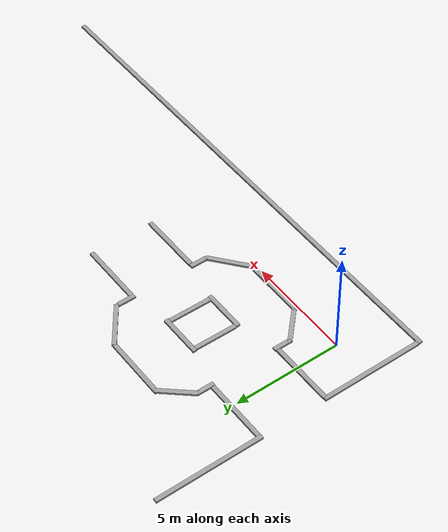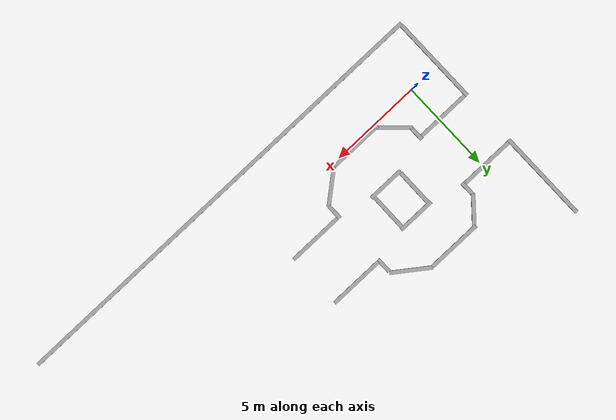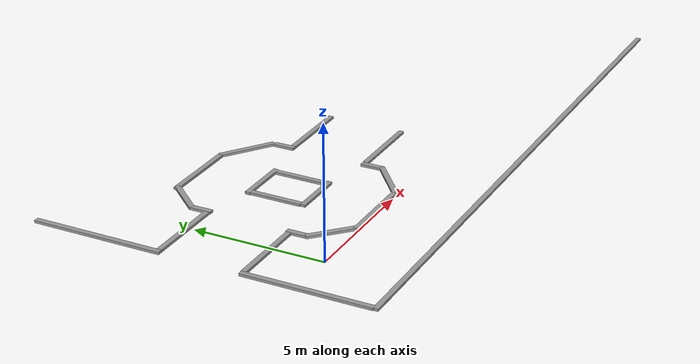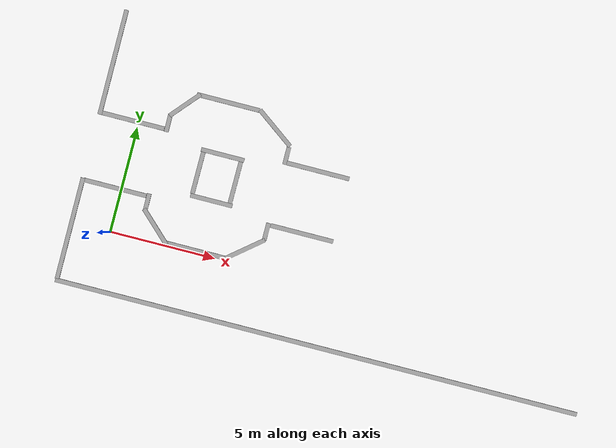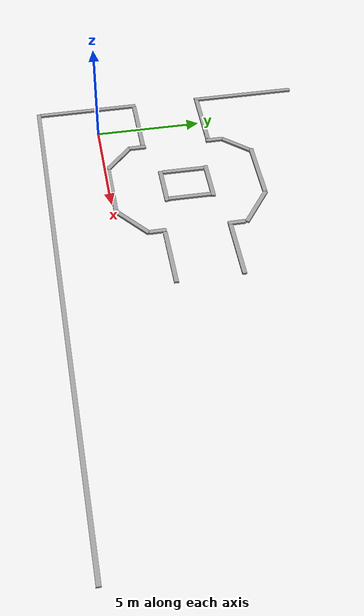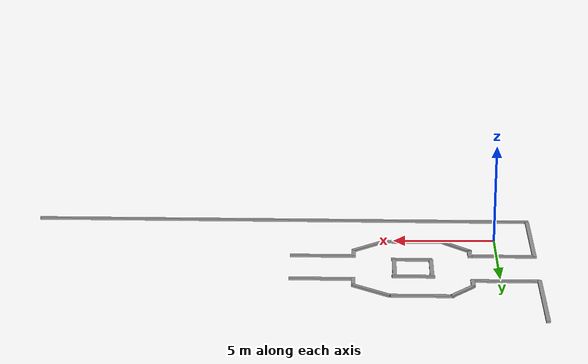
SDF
<sdf version="1.6">
 <model name="brick_box_3x1x3">
  <link name="link_1">
   <pose>-1.85709 -0.304134 0.5 0 -0 0</pose>
   <inertial>
    <mass>0.964444</mass>
    <inertia>
     <ixx>0.155127</ixx>
     <ixy>0</ixy>
     <ixz>0</ixz>
     <iyy>0.160741</iyy>
     <iyz>0</iyz>
     <izz>0.155127</izz>
    </inertia>
   </inertial>
   <visual name="visual">
    <pose>0 0 -0.5 0 -0 0</pose>
    <geometry><box><size>0.2 4.82222 0.1</size></box></geometry>
    <material>
     <lighting>1</lighting>
     <script><uri>file://media/materials/scripts/gazebo.material</uri><name>Gazebo/Grey</name></script>
     <ambient>0.3 0.3 0.3 1</ambient>
     <diffuse>0.7 0.7 0.7 1</diffuse>
     <specular>0.01 0.01 0.01 1</specular>
     <emissive>0 0 0 1</emissive>
     <shader type="vertex"><normal_map>__default__</normal_map></shader>
    </material>
   </visual>
   <collision name="collision">
    <pose>0 0 -0.5 0 -0 0</pose>
    <geometry><box><size>0.1 4.82222 0.2</size></box></geometry>
    <surface>
     <friction>
      <ode><mu>1</mu><mu2>1</mu2><fdir1>0 0 0</fdir1><slip1>0</slip1><slip2>0</slip2></ode>
      <torsional>
       <coefficient>1</coefficient>
       <patch_radius>0</patch_radius>
       <surface_radius>0</surface_radius>
       <use_patch_radius>1</use_patch_radius>
       <ode><slip>0</slip></ode>
      </torsional>
     </friction>
     <bounce><restitution_coefficient>0</restitution_coefficient><threshold>1e+06</threshold></bounce>
     <contact>
      <collide_without_contact>0</collide_without_contact>
      <collide_without_contact_bitmask>1</collide_without_contact_bitmask>
      <collide_bitmask>1</collide_bitmask>
      <ode>
       <soft_cfm>0</soft_cfm>
       <soft_erp>0.2</soft_erp>
       <kp>1e+13</kp>
       <kd>1</kd>
       <max_vel>0.01</max_vel>
       <min_depth>0</min_depth>
      </ode>
      <bullet>
       <split_impulse>1</split_impulse>
       <split_impulse_penetration_threshold>-0.01</split_impulse_penetration_threshold>
       <soft_cfm>0</soft_cfm>
       <soft_erp>0.2</soft_erp>
       <kp>1e+13</kp>
       <kd>1</kd>
      </bullet>
     </contact>
    </surface>
   </collision>
  </link>
  <link name="link_1_clone">
   <pose>-1.84895 7.65508 0.5 0 -0 0</pose>
   <inertial>
    <mass>1</mass>
    <inertia>
     <ixx>0.166667</ixx>
     <ixy>0</ixy>
     <ixz>0</ixz>
     <iyy>0.166667</iyy>
     <iyz>0</iyz>
     <izz>0.166667</izz>
    </inertia>
   </inertial>
   <visual name="visual">
    <pose>0 0 -0.5 0 -0 0</pose>
    <geometry><box><size>0.2 5 0.1</size></box></geometry>
    <material>
     <lighting>1</lighting>
     <script><uri>file://media/materials/scripts/gazebo.material</uri><name>Gazebo/Grey</name></script>
     <ambient>0.3 0.3 0.3 1</ambient>
     <diffuse>0.7 0.7 0.7 1</diffuse>
     <specular>0.01 0.01 0.01 1</specular>
     <emissive>0 0 0 1</emissive>
     <shader type="vertex"><normal_map>__default__</normal_map></shader>
    </material>
   </visual>
   <collision name="collision">
    <pose>0 0 -0.5 0 -0 0</pose>
    <geometry><box><size>0.1 5 0.2</size></box></geometry>
    <surface>
     <friction>
      <ode><mu>1</mu><mu2>1</mu2><fdir1>0 0 0</fdir1><slip1>0</slip1><slip2>0</slip2></ode>
      <torsional>
       <coefficient>1</coefficient>
       <patch_radius>0</patch_radius>
       <surface_radius>0</surface_radius>
       <use_patch_radius>1</use_patch_radius>
       <ode><slip>0</slip></ode>
      </torsional>
     </friction>
     <bounce><restitution_coefficient>0</restitution_coefficient><threshold>1e+06</threshold></bounce>
     <contact>
      <collide_without_contact>0</collide_without_contact>
      <collide_without_contact_bitmask>1</collide_without_contact_bitmask>
      <collide_bitmask>1</collide_bitmask>
      <ode>
       <soft_cfm>0</soft_cfm>
       <soft_erp>0.2</soft_erp>
       <kp>1e+13</kp>
       <kd>1</kd>
       <max_vel>0.01</max_vel>
       <min_depth>0</min_depth>
      </ode>
      <bullet>
       <split_impulse>1</split_impulse>
       <split_impulse_penetration_threshold>-0.01</split_impulse_penetration_threshold>
       <soft_cfm>0</soft_cfm>
       <soft_erp>0.2</soft_erp>
       <kp>1e+13</kp>
       <kd>1</kd>
      </bullet>
     </contact>
    </surface>
   </collision>
  </link>
  <link name="link_1_clone_0">
   <pose>10.5728 -2.79376 0.5 0 -0 0</pose>
   <inertial>
    <mass>1</mass>
    <inertia>
     <ixx>0.166667</ixx>
     <ixy>0</ixy>
     <ixz>0</ixz>
     <iyy>0.166667</iyy>
     <iyz>0</iyz>
     <izz>0.166667</izz>
    </inertia>
   </inertial>
   <visual name="visual">
    <pose>0 0 -0.5 0 -0 0</pose>
    <geometry><box><size>25 0.2 0.1</size></box></geometry>
    <material>
     <lighting>1</lighting>
     <script><uri>file://media/materials/scripts/gazebo.material</uri><name>Gazebo/Grey</name></script>
     <ambient>0.3 0.3 0.3 1</ambient>
     <diffuse>0.7 0.7 0.7 1</diffuse>
     <specular>0.01 0.01 0.01 1</specular>
     <emissive>0 0 0 1</emissive>
     <shader type="vertex"><normal_map>__default__</normal_map></shader>
    </material>
   </visual>
   <collision name="collision">
    <pose>0 0 -0.5 0 -0 0</pose>
    <geometry><box><size>25 0.2 0.2</size></box></geometry>
    <surface>
     <friction>
      <ode><mu>1</mu><mu2>1</mu2><fdir1>0 0 0</fdir1><slip1>0</slip1><slip2>0</slip2></ode>
      <torsional>
       <coefficient>1</coefficient>
       <patch_radius>0</patch_radius>
       <surface_radius>0</surface_radius>
       <use_patch_radius>1</use_patch_radius>
       <ode><slip>0</slip></ode>
      </torsional>
     </friction>
     <bounce><restitution_coefficient>0</restitution_coefficient><threshold>1e+06</threshold></bounce>
     <contact>
      <collide_without_contact>0</collide_without_contact>
      <collide_without_contact_bitmask>1</collide_without_contact_bitmask>
      <collide_bitmask>1</collide_bitmask>
      <ode>
       <soft_cfm>0</soft_cfm>
       <soft_erp>0.2</soft_erp>
       <kp>1e+13</kp>
       <kd>1</kd>
       <max_vel>0.01</max_vel>
       <min_depth>0</min_depth>
      </ode>
      <bullet>
       <split_impulse>1</split_impulse>
       <split_impulse_penetration_threshold>-0.01</split_impulse_penetration_threshold>
       <soft_cfm>0</soft_cfm>
       <soft_erp>0.2</soft_erp>
       <kp>1e+13</kp>
       <kd>1</kd>
      </bullet>
     </contact>
    </surface>
   </collision>
  </link>
  <link name="link_1_clone_3">
   <pose>-0.307076 2.03145 0.5 0 -0 0</pose>
   <inertial>
    <mass>1</mass>
    <inertia>
     <ixx>0.166667</ixx>
     <ixy>0</ixy>
     <ixz>0</ixz>
     <iyy>0.166667</iyy>
     <iyz>0</iyz>
     <izz>0.166667</izz>
    </inertia>
   </inertial>
   <visual name="visual">
    <pose>0 0 -0.5 0 -0 0</pose>
    <geometry><box><size>3 0.2 0.1</size></box></geometry>
    <material>
     <lighting>1</lighting>
     <script><uri>file://media/materials/scripts/gazebo.material</uri><name>Gazebo/Grey</name></script>
     <ambient>0.3 0.3 0.3 1</ambient>
     <diffuse>0.7 0.7 0.7 1</diffuse>
     <specular>0.01 0.01 0.01 1</specular>
     <emissive>0 0 0 1</emissive>
     <shader type="vertex"><normal_map>__default__</normal_map></shader>
    </material>
   </visual>
   <collision name="collision">
    <pose>0 0 -0.5 0 -0 0</pose>
    <geometry><box><size>3 0.2 0.2</size></box></geometry>
    <surface>
     <friction>
      <ode><mu>1</mu><mu2>1</mu2><fdir1>0 0 0</fdir1><slip1>0</slip1><slip2>0</slip2></ode>
      <torsional>
       <coefficient>1</coefficient>
       <patch_radius>0</patch_radius>
       <surface_radius>0</surface_radius>
       <use_patch_radius>1</use_patch_radius>
       <ode><slip>0</slip></ode>
      </torsional>
     </friction>
     <bounce><restitution_coefficient>0</restitution_coefficient><threshold>1e+06</threshold></bounce>
     <contact>
      <collide_without_contact>0</collide_without_contact>
      <collide_without_contact_bitmask>1</collide_without_contact_bitmask>
      <collide_bitmask>1</collide_bitmask>
      <ode>
       <soft_cfm>0</soft_cfm>
       <soft_erp>0.2</soft_erp>
       <kp>1e+13</kp>
       <kd>1</kd>
       <max_vel>0.01</max_vel>
       <min_depth>0</min_depth>
      </ode>
      <bullet>
       <split_impulse>1</split_impulse>
       <split_impulse_penetration_threshold>-0.01</split_impulse_penetration_threshold>
       <soft_cfm>0</soft_cfm>
       <soft_erp>0.2</soft_erp>
       <kp>1e+13</kp>
       <kd>1</kd>
      </bullet>
     </contact>
    </surface>
   </collision>
  </link>
  <link name="link_1_clone_3_clone">
   <pose>-0.278142 5.2552 0.5 0 -0 0</pose>
   <inertial>
    <mass>1</mass>
    <inertia>
     <ixx>0.166667</ixx>
     <ixy>0</ixy>
     <ixz>0</ixz>
     <iyy>0.166667</iyy>
     <iyz>0</iyz>
     <izz>0.166667</izz>
    </inertia>
   </inertial>
   <visual name="visual">
    <pose>0 0 -0.5 0 -0 0</pose>
    <geometry><box><size>3 0.2 0.1</size></box></geometry>
    <material>
     <lighting>1</lighting>
     <script><uri>file://media/materials/scripts/gazebo.material</uri><name>Gazebo/Grey</name></script>
     <ambient>0.3 0.3 0.3 1</ambient>
     <diffuse>0.7 0.7 0.7 1</diffuse>
     <specular>0.01 0.01 0.01 1</specular>
     <emissive>0 0 0 1</emissive>
     <shader type="vertex"><normal_map>__default__</normal_map></shader>
    </material>
   </visual>
   <collision name="collision">
    <pose>0 0 -0.5 0 -0 0</pose>
    <geometry><box><size>3 0.2 0.2</size></box></geometry>
    <surface>
     <friction>
      <ode><mu>1</mu><mu2>1</mu2><fdir1>0 0 0</fdir1><slip1>0</slip1><slip2>0</slip2></ode>
      <torsional>
       <coefficient>1</coefficient>
       <patch_radius>0</patch_radius>
       <surface_radius>0</surface_radius>
       <use_patch_radius>1</use_patch_radius>
       <ode><slip>0</slip></ode>
      </torsional>
     </friction>
     <bounce><restitution_coefficient>0</restitution_coefficient><threshold>1e+06</threshold></bounce>
     <contact>
      <collide_without_contact>0</collide_without_contact>
      <collide_without_contact_bitmask>1</collide_without_contact_bitmask>
      <collide_bitmask>1</collide_bitmask>
      <ode>
       <soft_cfm>0</soft_cfm>
       <soft_erp>0.2</soft_erp>
       <kp>1e+13</kp>
       <kd>1</kd>
       <max_vel>0.01</max_vel>
       <min_depth>0</min_depth>
      </ode>
      <bullet>
       <split_impulse>1</split_impulse>
       <split_impulse_penetration_threshold>-0.01</split_impulse_penetration_threshold>
       <soft_cfm>0</soft_cfm>
       <soft_erp>0.2</soft_erp>
       <kp>1e+13</kp>
       <kd>1</kd>
      </bullet>
     </contact>
    </surface>
   </collision>
  </link>
  <link name="link_1_clone_3_clone_10">
   <pose>6.19258 6.57027 0.5 0 0 -0.628314</pose>
   <inertial>
    <mass>0.633292</mass>
    <inertia>
     <ixx>0.107431</ixx>
     <ixy>0</ixy>
     <ixz>0</ixz>
     <iyy>0.0732112</iyy>
     <iyz>0</iyz>
     <izz>0.0750937</izz>
    </inertia>
   </inertial>
   <visual name="visual">
    <pose>0 0 -0.5 0 -0 0</pose>
    <geometry><box><size>2.17802 0.203535 0.1</size></box></geometry>
    <material>
     <lighting>1</lighting>
     <script><uri>file://media/materials/scripts/gazebo.material</uri><name>Gazebo/Grey</name></script>
     <ambient>0.3 0.3 0.3 1</ambient>
     <diffuse>0.7 0.7 0.7 1</diffuse>
     <specular>0.01 0.01 0.01 1</specular>
     <emissive>0 0 0 1</emissive>
     <shader type="vertex"><normal_map>__default__</normal_map></shader>
    </material>
   </visual>
   <collision name="collision">
    <pose>0 0 -0.5 0 -0 0</pose>
    <geometry><box><size>2.17802 0.203535 0.2</size></box></geometry>
    <surface>
     <friction>
      <ode><mu>1</mu><mu2>1</mu2><fdir1>0 0 0</fdir1><slip1>0</slip1><slip2>0</slip2></ode>
      <torsional>
       <coefficient>1</coefficient>
       <patch_radius>0</patch_radius>
       <surface_radius>0</surface_radius>
       <use_patch_radius>1</use_patch_radius>
       <ode><slip>0</slip></ode>
      </torsional>
     </friction>
     <bounce><restitution_coefficient>0</restitution_coefficient><threshold>1e+06</threshold></bounce>
     <contact>
      <collide_without_contact>0</collide_without_contact>
      <collide_without_contact_bitmask>1</collide_without_contact_bitmask>
      <collide_bitmask>1</collide_bitmask>
      <ode>
       <soft_cfm>0</soft_cfm>
       <soft_erp>0.2</soft_erp>
       <kp>1e+13</kp>
       <kd>1</kd>
       <max_vel>0.01</max_vel>
       <min_depth>0</min_depth>
      </ode>
      <bullet>
       <split_impulse>1</split_impulse>
       <split_impulse_penetration_threshold>-0.01</split_impulse_penetration_threshold>
       <soft_cfm>0</soft_cfm>
       <soft_erp>0.2</soft_erp>
       <kp>1e+13</kp>
       <kd>1</kd>
      </bullet>
     </contact>
    </surface>
   </collision>
  </link>
  <link name="link_1_clone_3_clone_10_clone">
   <pose>1.95197 0.748415 0.5 0 0 -0.76059</pose>
   <inertial>
    <mass>0.5645</mass>
    <inertia>
     <ixx>0.0957615</ixx>
     <ixy>0</ixy>
     <ixz>0</ixz>
     <iyy>0.0615164</iyy>
     <iyz>0</iyz>
     <izz>0.0631938</izz>
    </inertia>
   </inertial>
   <visual name="visual">
    <pose>0 0 -0.5 0 -0 0</pose>
    <geometry><box><size>1.94144 0.203535 0.1</size></box></geometry>
    <material>
     <lighting>1</lighting>
     <script><uri>file://media/materials/scripts/gazebo.material</uri><name>Gazebo/Grey</name></script>
     <ambient>0.3 0.3 0.3 1</ambient>
     <diffuse>0.7 0.7 0.7 1</diffuse>
     <specular>0.01 0.01 0.01 1</specular>
     <emissive>0 0 0 1</emissive>
     <shader type="vertex"><normal_map>__default__</normal_map></shader>
    </material>
   </visual>
   <collision name="collision">
    <pose>0 0 -0.5 0 -0 0</pose>
    <geometry><box><size>1.94144 0.203535 0.2</size></box></geometry>
    <surface>
     <friction>
      <ode><mu>1</mu><mu2>1</mu2><fdir1>0 0 0</fdir1><slip1>0</slip1><slip2>0</slip2></ode>
      <torsional>
       <coefficient>1</coefficient>
       <patch_radius>0</patch_radius>
       <surface_radius>0</surface_radius>
       <use_patch_radius>1</use_patch_radius>
       <ode><slip>0</slip></ode>
      </torsional>
     </friction>
     <bounce><restitution_coefficient>0</restitution_coefficient><threshold>1e+06</threshold></bounce>
     <contact>
      <collide_without_contact>0</collide_without_contact>
      <collide_without_contact_bitmask>1</collide_without_contact_bitmask>
      <collide_bitmask>1</collide_bitmask>
      <ode>
       <soft_cfm>0</soft_cfm>
       <soft_erp>0.2</soft_erp>
       <kp>1e+13</kp>
       <kd>1</kd>
       <max_vel>0.01</max_vel>
       <min_depth>0</min_depth>
      </ode>
      <bullet>
       <split_impulse>1</split_impulse>
       <split_impulse_penetration_threshold>-0.01</split_impulse_penetration_threshold>
       <soft_cfm>0</soft_cfm>
       <soft_erp>0.2</soft_erp>
       <kp>1e+13</kp>
       <kd>1</kd>
      </bullet>
     </contact>
    </surface>
   </collision>
  </link>
  <link name="link_1_clone_3_clone_10_clone_0">
   <pose>1.88231 6.56558 0.5 0 0 -2.28733</pose>
   <inertial>
    <mass>0.507827</mass>
    <inertia>
     <ixx>0.0861472</ixx>
     <ixy>0</ixy>
     <ixz>0</ixz>
     <iyy>0.0528569</iyy>
     <iyz>0</iyz>
     <izz>0.0543659</izz>
    </inertia>
   </inertial>
   <visual name="visual">
    <pose>0 0 -0.5 0 -0 0</pose>
    <geometry><box><size>1.74653 0.203535 0.1</size></box></geometry>
    <material>
     <lighting>1</lighting>
     <script><uri>file://media/materials/scripts/gazebo.material</uri><name>Gazebo/Grey</name></script>
     <ambient>0.3 0.3 0.3 1</ambient>
     <diffuse>0.7 0.7 0.7 1</diffuse>
     <specular>0.01 0.01 0.01 1</specular>
     <emissive>0 0 0 1</emissive>
     <shader type="vertex"><normal_map>__default__</normal_map></shader>
    </material>
   </visual>
   <collision name="collision">
    <pose>0 0 -0.5 0 -0 0</pose>
    <geometry><box><size>1.74653 0.203535 0.2</size></box></geometry>
    <surface>
     <friction>
      <ode><mu>1</mu><mu2>1</mu2><fdir1>0 0 0</fdir1><slip1>0</slip1><slip2>0</slip2></ode>
      <torsional>
       <coefficient>1</coefficient>
       <patch_radius>0</patch_radius>
       <surface_radius>0</surface_radius>
       <use_patch_radius>1</use_patch_radius>
       <ode><slip>0</slip></ode>
      </torsional>
     </friction>
     <bounce><restitution_coefficient>0</restitution_coefficient><threshold>1e+06</threshold></bounce>
     <contact>
      <collide_without_contact>0</collide_without_contact>
      <collide_without_contact_bitmask>1</collide_without_contact_bitmask>
      <collide_bitmask>1</collide_bitmask>
      <ode>
       <soft_cfm>0</soft_cfm>
       <soft_erp>0.2</soft_erp>
       <kp>1e+13</kp>
       <kd>1</kd>
       <max_vel>0.01</max_vel>
       <min_depth>0</min_depth>
      </ode>
      <bullet>
       <split_impulse>1</split_impulse>
       <split_impulse_penetration_threshold>-0.01</split_impulse_penetration_threshold>
       <soft_cfm>0</soft_cfm>
       <soft_erp>0.2</soft_erp>
       <kp>1e+13</kp>
       <kd>1</kd>
      </bullet>
     </contact>
    </surface>
   </collision>
  </link>
  <link name="link_1_clone_3_clone_10_clone_1">
   <pose>1.30623 1.75197 0.5 0 0 -1.56821</pose>
   <inertial>
    <mass>0.239353</mass>
    <inertia>
     <ixx>0.0406036</ixx>
     <ixy>0</ixy>
     <ixz>0</ixz>
     <iyy>0.0210496</iyy>
     <iyz>0</iyz>
     <izz>0.0217608</izz>
    </inertia>
   </inertial>
   <visual name="visual">
    <pose>0 0 -0.5 0 -0 0</pose>
    <geometry><box><size>0.823187 0.203535 0.1</size></box></geometry>
    <material>
     <lighting>1</lighting>
     <script><uri>file://media/materials/scripts/gazebo.material</uri><name>Gazebo/Grey</name></script>
     <ambient>0.3 0.3 0.3 1</ambient>
     <diffuse>0.7 0.7 0.7 1</diffuse>
     <specular>0.01 0.01 0.01 1</specular>
     <emissive>0 0 0 1</emissive>
     <shader type="vertex"><normal_map>__default__</normal_map></shader>
    </material>
   </visual>
   <collision name="collision">
    <pose>0 0 -0.5 0 -0 0</pose>
    <geometry><box><size>0.823187 0.203535 0.2</size></box></geometry>
    <surface>
     <friction>
      <ode><mu>1</mu><mu2>1</mu2><fdir1>0 0 0</fdir1><slip1>0</slip1><slip2>0</slip2></ode>
      <torsional>
       <coefficient>1</coefficient>
       <patch_radius>0</patch_radius>
       <surface_radius>0</surface_radius>
       <use_patch_radius>1</use_patch_radius>
       <ode><slip>0</slip></ode>
      </torsional>
     </friction>
     <bounce><restitution_coefficient>0</restitution_coefficient><threshold>1e+06</threshold></bounce>
     <contact>
      <collide_without_contact>0</collide_without_contact>
      <collide_without_contact_bitmask>1</collide_without_contact_bitmask>
      <collide_bitmask>1</collide_bitmask>
      <ode>
       <soft_cfm>0</soft_cfm>
       <soft_erp>0.2</soft_erp>
       <kp>1e+13</kp>
       <kd>1</kd>
       <max_vel>0.01</max_vel>
       <min_depth>0</min_depth>
      </ode>
      <bullet>
       <split_impulse>1</split_impulse>
       <split_impulse_penetration_threshold>-0.01</split_impulse_penetration_threshold>
       <soft_cfm>0</soft_cfm>
       <soft_erp>0.2</soft_erp>
       <kp>1e+13</kp>
       <kd>1</kd>
      </bullet>
     </contact>
    </surface>
   </collision>
  </link>
  <link name="link_1_clone_3_clone_10_clone_1_clone">
   <pose>1.33845 5.54897 0.5 0 0 -1.56821</pose>
   <inertial>
    <mass>0.239353</mass>
    <inertia>
     <ixx>0.0406036</ixx>
     <ixy>0</ixy>
     <ixz>0</ixz>
     <iyy>0.0210496</iyy>
     <iyz>0</iyz>
     <izz>0.0217608</izz>
    </inertia>
   </inertial>
   <visual name="visual">
    <pose>0 0 -0.5 0 -0 0</pose>
    <geometry><box><size>0.823187 0.203535 0.1</size></box></geometry>
    <material>
     <lighting>1</lighting>
     <script><uri>file://media/materials/scripts/gazebo.material</uri><name>Gazebo/Grey</name></script>
     <ambient>0.3 0.3 0.3 1</ambient>
     <diffuse>0.7 0.7 0.7 1</diffuse>
     <specular>0.01 0.01 0.01 1</specular>
     <emissive>0 0 0 1</emissive>
     <shader type="vertex"><normal_map>__default__</normal_map></shader>
    </material>
   </visual>
   <collision name="collision">
    <pose>0 0 -0.5 0 -0 0</pose>
    <geometry><box><size>0.823187 0.203535 0.2</size></box></geometry>
    <surface>
     <friction>
      <ode><mu>1</mu><mu2>1</mu2><fdir1>0 0 0</fdir1><slip1>0</slip1><slip2>0</slip2></ode>
      <torsional>
       <coefficient>1</coefficient>
       <patch_radius>0</patch_radius>
       <surface_radius>0</surface_radius>
       <use_patch_radius>1</use_patch_radius>
       <ode><slip>0</slip></ode>
      </torsional>
     </friction>
     <bounce><restitution_coefficient>0</restitution_coefficient><threshold>1e+06</threshold></bounce>
     <contact>
      <collide_without_contact>0</collide_without_contact>
      <collide_without_contact_bitmask>1</collide_without_contact_bitmask>
      <collide_bitmask>1</collide_bitmask>
      <ode>
       <soft_cfm>0</soft_cfm>
       <soft_erp>0.2</soft_erp>
       <kp>1e+13</kp>
       <kd>1</kd>
       <max_vel>0.01</max_vel>
       <min_depth>0</min_depth>
      </ode>
      <bullet>
       <split_impulse>1</split_impulse>
       <split_impulse_penetration_threshold>-0.01</split_impulse_penetration_threshold>
       <soft_cfm>0</soft_cfm>
       <soft_erp>0.2</soft_erp>
       <kp>1e+13</kp>
       <kd>1</kd>
      </bullet>
     </contact>
    </surface>
   </collision>
  </link>
  <link name="link_1_clone_3_clone_10_clone_1_clone_0">
   <pose>7.00342 1.81838 0.5 0 0 -1.56821</pose>
   <inertial>
    <mass>0.239353</mass>
    <inertia>
     <ixx>0.0406036</ixx>
     <ixy>0</ixy>
     <ixz>0</ixz>
     <iyy>0.0210496</iyy>
     <iyz>0</iyz>
     <izz>0.0217608</izz>
    </inertia>
   </inertial>
   <visual name="visual">
    <pose>0 0 -0.5 0 -0 0</pose>
    <geometry><box><size>0.823187 0.203535 0.1</size></box></geometry>
    <material>
     <lighting>1</lighting>
     <script><uri>file://media/materials/scripts/gazebo.material</uri><name>Gazebo/Grey</name></script>
     <ambient>0.3 0.3 0.3 1</ambient>
     <diffuse>0.7 0.7 0.7 1</diffuse>
     <specular>0.01 0.01 0.01 1</specular>
     <emissive>0 0 0 1</emissive>
     <shader type="vertex"><normal_map>__default__</normal_map></shader>
    </material>
   </visual>
   <collision name="collision">
    <pose>0 0 -0.5 0 -0 0</pose>
    <geometry><box><size>0.823187 0.203535 0.2</size></box></geometry>
    <surface>
     <friction>
      <ode><mu>1</mu><mu2>1</mu2><fdir1>0 0 0</fdir1><slip1>0</slip1><slip2>0</slip2></ode>
      <torsional>
       <coefficient>1</coefficient>
       <patch_radius>0</patch_radius>
       <surface_radius>0</surface_radius>
       <use_patch_radius>1</use_patch_radius>
       <ode><slip>0</slip></ode>
      </torsional>
     </friction>
     <bounce><restitution_coefficient>0</restitution_coefficient><threshold>1e+06</threshold></bounce>
     <contact>
      <collide_without_contact>0</collide_without_contact>
      <collide_without_contact_bitmask>1</collide_without_contact_bitmask>
      <collide_bitmask>1</collide_bitmask>
      <ode>
       <soft_cfm>0</soft_cfm>
       <soft_erp>0.2</soft_erp>
       <kp>1e+13</kp>
       <kd>1</kd>
       <max_vel>0.01</max_vel>
       <min_depth>0</min_depth>
      </ode>
      <bullet>
       <split_impulse>1</split_impulse>
       <split_impulse_penetration_threshold>-0.01</split_impulse_penetration_threshold>
       <soft_cfm>0</soft_cfm>
       <soft_erp>0.2</soft_erp>
       <kp>1e+13</kp>
       <kd>1</kd>
      </bullet>
     </contact>
    </surface>
   </collision>
  </link>
  <link name="link_1_clone_3_clone_10_clone_1_clone_1">
   <pose>7.04036 5.46158 0.5 0 0 -1.56821</pose>
   <inertial>
    <mass>0.239353</mass>
    <inertia>
     <ixx>0.0406036</ixx>
     <ixy>0</ixy>
     <ixz>0</ixz>
     <iyy>0.0210496</iyy>
     <iyz>0</iyz>
     <izz>0.0217608</izz>
    </inertia>
   </inertial>
   <visual name="visual">
    <pose>0 0 -0.5 0 -0 0</pose>
    <geometry><box><size>0.823187 0.203535 0.1</size></box></geometry>
    <material>
     <lighting>1</lighting>
     <script><uri>file://media/materials/scripts/gazebo.material</uri><name>Gazebo/Grey</name></script>
     <ambient>0.3 0.3 0.3 1</ambient>
     <diffuse>0.7 0.7 0.7 1</diffuse>
     <specular>0.01 0.01 0.01 1</specular>
     <emissive>0 0 0 1</emissive>
     <shader type="vertex"><normal_map>__default__</normal_map></shader>
    </material>
   </visual>
   <collision name="collision">
    <pose>0 0 -0.5 0 -0 0</pose>
    <geometry><box><size>0.823187 0.203535 0.2</size></box></geometry>
    <surface>
     <friction>
      <ode><mu>1</mu><mu2>1</mu2><fdir1>0 0 0</fdir1><slip1>0</slip1><slip2>0</slip2></ode>
      <torsional>
       <coefficient>1</coefficient>
       <patch_radius>0</patch_radius>
       <surface_radius>0</surface_radius>
       <use_patch_radius>1</use_patch_radius>
       <ode><slip>0</slip></ode>
      </torsional>
     </friction>
     <bounce><restitution_coefficient>0</restitution_coefficient><threshold>1e+06</threshold></bounce>
     <contact>
      <collide_without_contact>0</collide_without_contact>
      <collide_without_contact_bitmask>1</collide_without_contact_bitmask>
      <collide_bitmask>1</collide_bitmask>
      <ode>
       <soft_cfm>0</soft_cfm>
       <soft_erp>0.2</soft_erp>
       <kp>1e+13</kp>
       <kd>1</kd>
       <max_vel>0.01</max_vel>
       <min_depth>0</min_depth>
      </ode>
      <bullet>
       <split_impulse>1</split_impulse>
       <split_impulse_penetration_threshold>-0.01</split_impulse_penetration_threshold>
       <soft_cfm>0</soft_cfm>
       <soft_erp>0.2</soft_erp>
       <kp>1e+13</kp>
       <kd>1</kd>
      </bullet>
     </contact>
    </surface>
   </collision>
  </link>
  <link name="link_1_clone_3_clone_10_clone_2">
   <pose>6.23458 0.770061 0.5 0 0 -2.45426</pose>
   <inertial>
    <mass>0.603389</mass>
    <inertia>
     <ixx>0.102359</ixx>
     <ixy>0</ixy>
     <ixz>0</ixz>
     <iyy>0.0679589</iyy>
     <iyz>0</iyz>
     <izz>0.0697524</izz>
    </inertia>
   </inertial>
   <visual name="visual">
    <pose>0 0 -0.5 0 -0 0</pose>
    <geometry><box><size>2.07517 0.203535 0.1</size></box></geometry>
    <material>
     <lighting>1</lighting>
     <script><uri>file://media/materials/scripts/gazebo.material</uri><name>Gazebo/Grey</name></script>
     <ambient>0.3 0.3 0.3 1</ambient>
     <diffuse>0.7 0.7 0.7 1</diffuse>
     <specular>0.01 0.01 0.01 1</specular>
     <emissive>0 0 0 1</emissive>
     <shader type="vertex"><normal_map>__default__</normal_map></shader>
    </material>
   </visual>
   <collision name="collision">
    <pose>0 0 -0.5 0 -0 0</pose>
    <geometry><box><size>2.07517 0.203535 0.2</size></box></geometry>
    <surface>
     <friction>
      <ode><mu>1</mu><mu2>1</mu2><fdir1>0 0 0</fdir1><slip1>0</slip1><slip2>0</slip2></ode>
      <torsional>
       <coefficient>1</coefficient>
       <patch_radius>0</patch_radius>
       <surface_radius>0</surface_radius>
       <use_patch_radius>1</use_patch_radius>
       <ode><slip>0</slip></ode>
      </torsional>
     </friction>
     <bounce><restitution_coefficient>0</restitution_coefficient><threshold>1e+06</threshold></bounce>
     <contact>
      <collide_without_contact>0</collide_without_contact>
      <collide_without_contact_bitmask>1</collide_without_contact_bitmask>
      <collide_bitmask>1</collide_bitmask>
      <ode>
       <soft_cfm>0</soft_cfm>
       <soft_erp>0.2</soft_erp>
       <kp>1e+13</kp>
       <kd>1</kd>
       <max_vel>0.01</max_vel>
       <min_depth>0</min_depth>
      </ode>
      <bullet>
       <split_impulse>1</split_impulse>
       <split_impulse_penetration_threshold>-0.01</split_impulse_penetration_threshold>
       <soft_cfm>0</soft_cfm>
       <soft_erp>0.2</soft_erp>
       <kp>1e+13</kp>
       <kd>1</kd>
      </bullet>
     </contact>
    </surface>
   </collision>
  </link>
  <link name="link_1_clone_3_clone_2">
   <pose>8.62043 2.14783 0.5 0 -0 0</pose>
   <inertial>
    <mass>1</mass>
    <inertia>
     <ixx>0.166667</ixx>
     <ixy>0</ixy>
     <ixz>0</ixz>
     <iyy>0.166667</iyy>
     <iyz>0</iyz>
     <izz>0.166667</izz>
    </inertia>
   </inertial>
   <visual name="visual">
    <pose>0 0 -0.5 0 -0 0</pose>
    <geometry><box><size>3 0.2 0.1</size></box></geometry>
    <material>
     <lighting>1</lighting>
     <script><uri>file://media/materials/scripts/gazebo.material</uri><name>Gazebo/Grey</name></script>
     <ambient>0.3 0.3 0.3 1</ambient>
     <diffuse>0.7 0.7 0.7 1</diffuse>
     <specular>0.01 0.01 0.01 1</specular>
     <emissive>0 0 0 1</emissive>
     <shader type="vertex"><normal_map>__default__</normal_map></shader>
    </material>
   </visual>
   <collision name="collision">
    <pose>0 0 -0.5 0 -0 0</pose>
    <geometry><box><size>3 0.2 0.2</size></box></geometry>
    <surface>
     <friction>
      <ode><mu>1</mu><mu2>1</mu2><fdir1>0 0 0</fdir1><slip1>0</slip1><slip2>0</slip2></ode>
      <torsional>
       <coefficient>1</coefficient>
       <patch_radius>0</patch_radius>
       <surface_radius>0</surface_radius>
       <use_patch_radius>1</use_patch_radius>
       <ode><slip>0</slip></ode>
      </torsional>
     </friction>
     <bounce><restitution_coefficient>0</restitution_coefficient><threshold>1e+06</threshold></bounce>
     <contact>
      <collide_without_contact>0</collide_without_contact>
      <collide_without_contact_bitmask>1</collide_without_contact_bitmask>
      <collide_bitmask>1</collide_bitmask>
      <ode>
       <soft_cfm>0</soft_cfm>
       <soft_erp>0.2</soft_erp>
       <kp>1e+13</kp>
       <kd>1</kd>
       <max_vel>0.01</max_vel>
       <min_depth>0</min_depth>
      </ode>
      <bullet>
       <split_impulse>1</split_impulse>
       <split_impulse_penetration_threshold>-0.01</split_impulse_penetration_threshold>
       <soft_cfm>0</soft_cfm>
       <soft_erp>0.2</soft_erp>
       <kp>1e+13</kp>
       <kd>1</kd>
      </bullet>
     </contact>
    </surface>
   </collision>
  </link>
  <link name="link_1_clone_3_clone_3">
   <pose>8.62079 5.14783 0.5 0 -0 0</pose>
   <inertial>
    <mass>1</mass>
    <inertia>
     <ixx>0.166667</ixx>
     <ixy>0</ixy>
     <ixz>0</ixz>
     <iyy>0.166667</iyy>
     <iyz>0</iyz>
     <izz>0.166667</izz>
    </inertia>
   </inertial>
   <visual name="visual">
    <pose>0 0 -0.5 0 -0 0</pose>
    <geometry><box><size>3 0.2 0.1</size></box></geometry>
    <material>
     <lighting>1</lighting>
     <script><uri>file://media/materials/scripts/gazebo.material</uri><name>Gazebo/Grey</name></script>
     <ambient>0.3 0.3 0.3 1</ambient>
     <diffuse>0.7 0.7 0.7 1</diffuse>
     <specular>0.01 0.01 0.01 1</specular>
     <emissive>0 0 0 1</emissive>
     <shader type="vertex"><normal_map>__default__</normal_map></shader>
    </material>
   </visual>
   <collision name="collision">
    <pose>0 0 -0.5 0 -0 0</pose>
    <geometry><box><size>3 0.2 0.2</size></box></geometry>
    <surface>
     <friction>
      <ode><mu>1</mu><mu2>1</mu2><fdir1>0 0 0</fdir1><slip1>0</slip1><slip2>0</slip2></ode>
      <torsional>
       <coefficient>1</coefficient>
       <patch_radius>0</patch_radius>
       <surface_radius>0</surface_radius>
       <use_patch_radius>1</use_patch_radius>
       <ode><slip>0</slip></ode>
      </torsional>
     </friction>
     <bounce><restitution_coefficient>0</restitution_coefficient><threshold>1e+06</threshold></bounce>
     <contact>
      <collide_without_contact>0</collide_without_contact>
      <collide_without_contact_bitmask>1</collide_without_contact_bitmask>
      <collide_bitmask>1</collide_bitmask>
      <ode>
       <soft_cfm>0</soft_cfm>
       <soft_erp>0.2</soft_erp>
       <kp>1e+13</kp>
       <kd>1</kd>
       <max_vel>0.01</max_vel>
       <min_depth>0</min_depth>
      </ode>
      <bullet>
       <split_impulse>1</split_impulse>
       <split_impulse_penetration_threshold>-0.01</split_impulse_penetration_threshold>
       <soft_cfm>0</soft_cfm>
       <soft_erp>0.2</soft_erp>
       <kp>1e+13</kp>
       <kd>1</kd>
      </bullet>
     </contact>
    </surface>
   </collision>
  </link>
  <link name="link_1_clone_3_clone_6">
   <pose>3.96174 0.14876 0.5 0 -0 0</pose>
   <inertial>
    <mass>1</mass>
    <inertia>
     <ixx>0.166667</ixx>
     <ixy>0</ixy>
     <ixz>0</ixz>
     <iyy>0.166667</iyy>
     <iyz>0</iyz>
     <izz>0.166667</izz>
    </inertia>
   </inertial>
   <visual name="visual">
    <pose>0 0 -0.5 0 -0 0</pose>
    <geometry><box><size>3 0.2 0.1</size></box></geometry>
    <material>
     <lighting>1</lighting>
     <script><uri>file://media/materials/scripts/gazebo.material</uri><name>Gazebo/Grey</name></script>
     <ambient>0.3 0.3 0.3 1</ambient>
     <diffuse>0.7 0.7 0.7 1</diffuse>
     <specular>0.01 0.01 0.01 1</specular>
     <emissive>0 0 0 1</emissive>
     <shader type="vertex"><normal_map>__default__</normal_map></shader>
    </material>
   </visual>
   <collision name="collision">
    <pose>0 0 -0.5 0 -0 0</pose>
    <geometry><box><size>3 0.2 0.2</size></box></geometry>
    <surface>
     <friction>
      <ode><mu>1</mu><mu2>1</mu2><fdir1>0 0 0</fdir1><slip1>0</slip1><slip2>0</slip2></ode>
      <torsional>
       <coefficient>1</coefficient>
       <patch_radius>0</patch_radius>
       <surface_radius>0</surface_radius>
       <use_patch_radius>1</use_patch_radius>
       <ode><slip>0</slip></ode>
      </torsional>
     </friction>
     <bounce><restitution_coefficient>0</restitution_coefficient><threshold>1e+06</threshold></bounce>
     <contact>
      <collide_without_contact>0</collide_without_contact>
      <collide_without_contact_bitmask>1</collide_without_contact_bitmask>
      <collide_bitmask>1</collide_bitmask>
      <ode>
       <soft_cfm>0</soft_cfm>
       <soft_erp>0.2</soft_erp>
       <kp>1e+13</kp>
       <kd>1</kd>
       <max_vel>0.01</max_vel>
       <min_depth>0</min_depth>
      </ode>
      <bullet>
       <split_impulse>1</split_impulse>
       <split_impulse_penetration_threshold>-0.01</split_impulse_penetration_threshold>
       <soft_cfm>0</soft_cfm>
       <soft_erp>0.2</soft_erp>
       <kp>1e+13</kp>
       <kd>1</kd>
      </bullet>
     </contact>
    </surface>
   </collision>
  </link>
  <link name="link_1_clone_3_clone_6_clone">
   <pose>4.16953 2.57278 0.5 0 -0 0</pose>
   <inertial>
    <mass>0.667428</mass>
    <inertia>
     <ixx>0.111238</ixx>
     <ixy>0</ixy>
     <ixz>0</ixz>
     <iyy>0.0803952</iyy>
     <iyz>0</iyz>
     <izz>0.0803952</izz>
    </inertia>
   </inertial>
   <visual name="visual">
    <pose>0 0 -0.5 0 -0 0</pose>
    <geometry><box><size>2.00229 0.2 0.1</size></box></geometry>
    <material>
     <lighting>1</lighting>
     <script><uri>file://media/materials/scripts/gazebo.material</uri><name>Gazebo/Grey</name></script>
     <ambient>0.3 0.3 0.3 1</ambient>
     <diffuse>0.7 0.7 0.7 1</diffuse>
     <specular>0.01 0.01 0.01 1</specular>
     <emissive>0 0 0 1</emissive>
     <shader type="vertex"><normal_map>__default__</normal_map></shader>
    </material>
   </visual>
   <collision name="collision">
    <pose>0 0 -0.5 0 -0 0</pose>
    <geometry><box><size>2.00229 0.2 0.2</size></box></geometry>
    <surface>
     <friction>
      <ode><mu>1</mu><mu2>1</mu2><fdir1>0 0 0</fdir1><slip1>0</slip1><slip2>0</slip2></ode>
      <torsional>
       <coefficient>1</coefficient>
       <patch_radius>0</patch_radius>
       <surface_radius>0</surface_radius>
       <use_patch_radius>1</use_patch_radius>
       <ode><slip>0</slip></ode>
      </torsional>
     </friction>
     <bounce><restitution_coefficient>0</restitution_coefficient><threshold>1e+06</threshold></bounce>
     <contact>
      <collide_without_contact>0</collide_without_contact>
      <collide_without_contact_bitmask>1</collide_without_contact_bitmask>
      <collide_bitmask>1</collide_bitmask>
      <ode>
       <soft_cfm>0</soft_cfm>
       <soft_erp>0.2</soft_erp>
       <kp>1e+13</kp>
       <kd>1</kd>
       <max_vel>0.01</max_vel>
       <min_depth>0</min_depth>
      </ode>
      <bullet>
       <split_impulse>1</split_impulse>
       <split_impulse_penetration_threshold>-0.01</split_impulse_penetration_threshold>
       <soft_cfm>0</soft_cfm>
       <soft_erp>0.2</soft_erp>
       <kp>1e+13</kp>
       <kd>1</kd>
      </bullet>
     </contact>
    </surface>
   </collision>
  </link>
  <link name="link_1_clone_3_clone_6_clone_0">
   <pose>4.15105 4.75979 0.5 0 -0 0</pose>
   <inertial>
    <mass>0.685907</mass>
    <inertia>
     <ixx>0.114318</ixx>
     <ixy>0</ixy>
     <ixz>0</ixz>
     <iyy>0.0840505</iyy>
     <iyz>0</iyz>
     <izz>0.0840505</izz>
    </inertia>
   </inertial>
   <visual name="visual">
    <pose>0 0 -0.5 0 -0 0</pose>
    <geometry><box><size>2.05772 0.2 0.1</size></box></geometry>
    <material>
     <lighting>1</lighting>
     <script><uri>file://media/materials/scripts/gazebo.material</uri><name>Gazebo/Grey</name></script>
     <ambient>0.3 0.3 0.3 1</ambient>
     <diffuse>0.7 0.7 0.7 1</diffuse>
     <specular>0.01 0.01 0.01 1</specular>
     <emissive>0 0 0 1</emissive>
     <shader type="vertex"><normal_map>__default__</normal_map></shader>
    </material>
   </visual>
   <collision name="collision">
    <pose>0 0 -0.5 0 -0 0</pose>
    <geometry><box><size>2.05772 0.2 0.2</size></box></geometry>
    <surface>
     <friction>
      <ode><mu>1</mu><mu2>1</mu2><fdir1>0 0 0</fdir1><slip1>0</slip1><slip2>0</slip2></ode>
      <torsional>
       <coefficient>1</coefficient>
       <patch_radius>0</patch_radius>
       <surface_radius>0</surface_radius>
       <use_patch_radius>1</use_patch_radius>
       <ode><slip>0</slip></ode>
      </torsional>
     </friction>
     <bounce><restitution_coefficient>0</restitution_coefficient><threshold>1e+06</threshold></bounce>
     <contact>
      <collide_without_contact>0</collide_without_contact>
      <collide_without_contact_bitmask>1</collide_without_contact_bitmask>
      <collide_bitmask>1</collide_bitmask>
      <ode>
       <soft_cfm>0</soft_cfm>
       <soft_erp>0.2</soft_erp>
       <kp>1e+13</kp>
       <kd>1</kd>
       <max_vel>0.01</max_vel>
       <min_depth>0</min_depth>
      </ode>
      <bullet>
       <split_impulse>1</split_impulse>
       <split_impulse_penetration_threshold>-0.01</split_impulse_penetration_threshold>
       <soft_cfm>0</soft_cfm>
       <soft_erp>0.2</soft_erp>
       <kp>1e+13</kp>
       <kd>1</kd>
      </bullet>
     </contact>
    </surface>
   </collision>
  </link>
  <link name="link_1_clone_3_clone_6_clone_clone">
   <pose>5.04034 3.65481 0.5 0 0 -1.57783</pose>
   <inertial>
    <mass>0.667428</mass>
    <inertia>
     <ixx>0.111238</ixx>
     <ixy>0</ixy>
     <ixz>0</ixz>
     <iyy>0.0803952</iyy>
     <iyz>0</iyz>
     <izz>0.0803952</izz>
    </inertia>
   </inertial>
   <visual name="visual">
    <pose>0 0 -0.5 0 -0 0</pose>
    <geometry><box><size>2.00229 0.2 0.1</size></box></geometry>
    <material>
     <lighting>1</lighting>
     <script><uri>file://media/materials/scripts/gazebo.material</uri><name>Gazebo/Grey</name></script>
     <ambient>0.3 0.3 0.3 1</ambient>
     <diffuse>0.7 0.7 0.7 1</diffuse>
     <specular>0.01 0.01 0.01 1</specular>
     <emissive>0 0 0 1</emissive>
     <shader type="vertex"><normal_map>__default__</normal_map></shader>
    </material>
   </visual>
   <collision name="collision">
    <pose>0 0 -0.5 0 -0 0</pose>
    <geometry><box><size>2.00229 0.2 0.2</size></box></geometry>
    <surface>
     <friction>
      <ode><mu>1</mu><mu2>1</mu2><fdir1>0 0 0</fdir1><slip1>0</slip1><slip2>0</slip2></ode>
      <torsional>
       <coefficient>1</coefficient>
       <patch_radius>0</patch_radius>
       <surface_radius>0</surface_radius>
       <use_patch_radius>1</use_patch_radius>
       <ode><slip>0</slip></ode>
      </torsional>
     </friction>
     <bounce><restitution_coefficient>0</restitution_coefficient><threshold>1e+06</threshold></bounce>
     <contact>
      <collide_without_contact>0</collide_without_contact>
      <collide_without_contact_bitmask>1</collide_without_contact_bitmask>
      <collide_bitmask>1</collide_bitmask>
      <ode>
       <soft_cfm>0</soft_cfm>
       <soft_erp>0.2</soft_erp>
       <kp>1e+13</kp>
       <kd>1</kd>
       <max_vel>0.01</max_vel>
       <min_depth>0</min_depth>
      </ode>
      <bullet>
       <split_impulse>1</split_impulse>
       <split_impulse_penetration_threshold>-0.01</split_impulse_penetration_threshold>
       <soft_cfm>0</soft_cfm>
       <soft_erp>0.2</soft_erp>
       <kp>1e+13</kp>
       <kd>1</kd>
      </bullet>
     </contact>
    </surface>
   </collision>
  </link>
  <link name="link_1_clone_3_clone_6_clone_clone_clone">
   <pose>3.24334 3.67433 0.5 0 0 -1.57783</pose>
   <inertial>
    <mass>0.667428</mass>
    <inertia>
     <ixx>0.111238</ixx>
     <ixy>0</ixy>
     <ixz>0</ixz>
     <iyy>0.0803952</iyy>
     <iyz>0</iyz>
     <izz>0.0803952</izz>
    </inertia>
   </inertial>
   <visual name="visual">
    <pose>0 0 -0.5 0 -0 0</pose>
    <geometry><box><size>2.00229 0.2 0.1</size></box></geometry>
    <material>
     <lighting>1</lighting>
     <script><uri>file://media/materials/scripts/gazebo.material</uri><name>Gazebo/Grey</name></script>
     <ambient>0.3 0.3 0.3 1</ambient>
     <diffuse>0.7 0.7 0.7 1</diffuse>
     <specular>0.01 0.01 0.01 1</specular>
     <emissive>0 0 0 1</emissive>
     <shader type="vertex"><normal_map>__default__</normal_map></shader>
    </material>
   </visual>
   <collision name="collision">
    <pose>0 0 -0.5 0 -0 0</pose>
    <geometry><box><size>2.00229 0.2 0.2</size></box></geometry>
    <surface>
     <friction>
      <ode><mu>1</mu><mu2>1</mu2><fdir1>0 0 0</fdir1><slip1>0</slip1><slip2>0</slip2></ode>
      <torsional>
       <coefficient>1</coefficient>
       <patch_radius>0</patch_radius>
       <surface_radius>0</surface_radius>
       <use_patch_radius>1</use_patch_radius>
       <ode><slip>0</slip></ode>
      </torsional>
     </friction>
     <bounce><restitution_coefficient>0</restitution_coefficient><threshold>1e+06</threshold></bounce>
     <contact>
      <collide_without_contact>0</collide_without_contact>
      <collide_without_contact_bitmask>1</collide_without_contact_bitmask>
      <collide_bitmask>1</collide_bitmask>
      <ode>
       <soft_cfm>0</soft_cfm>
       <soft_erp>0.2</soft_erp>
       <kp>1e+13</kp>
       <kd>1</kd>
       <max_vel>0.01</max_vel>
       <min_depth>0</min_depth>
      </ode>
      <bullet>
       <split_impulse>1</split_impulse>
       <split_impulse_penetration_threshold>-0.01</split_impulse_penetration_threshold>
       <soft_cfm>0</soft_cfm>
       <soft_erp>0.2</soft_erp>
       <kp>1e+13</kp>
       <kd>1</kd>
      </bullet>
     </contact>
    </surface>
   </collision>
  </link>
  <link name="link_1_clone_3_clone_7">
   <pose>3.80039 7.18262 0.5 0 -0 0</pose>
   <inertial>
    <mass>1</mass>
    <inertia>
     <ixx>0.166667</ixx>
     <ixy>0</ixy>
     <ixz>0</ixz>
     <iyy>0.166667</iyy>
     <iyz>0</iyz>
     <izz>0.166667</izz>
    </inertia>
   </inertial>
   <visual name="visual">
    <pose>0 0 -0.5 0 -0 0</pose>
    <geometry><box><size>3 0.2 0.1</size></box></geometry>
    <material>
     <lighting>1</lighting>
     <script><uri>file://media/materials/scripts/gazebo.material</uri><name>Gazebo/Grey</name></script>
     <ambient>0.3 0.3 0.3 1</ambient>
     <diffuse>0.7 0.7 0.7 1</diffuse>
     <specular>0.01 0.01 0.01 1</specular>
     <emissive>0 0 0 1</emissive>
     <shader type="vertex"><normal_map>__default__</normal_map></shader>
    </material>
   </visual>
   <collision name="collision">
    <pose>0 0 -0.5 0 -0 0</pose>
    <geometry><box><size>3 0.2 0.2</size></box></geometry>
    <surface>
     <friction>
      <ode><mu>1</mu><mu2>1</mu2><fdir1>0 0 0</fdir1><slip1>0</slip1><slip2>0</slip2></ode>
      <torsional>
       <coefficient>1</coefficient>
       <patch_radius>0</patch_radius>
       <surface_radius>0</surface_radius>
       <use_patch_radius>1</use_patch_radius>
       <ode><slip>0</slip></ode>
      </torsional>
     </friction>
     <bounce><restitution_coefficient>0</restitution_coefficient><threshold>1e+06</threshold></bounce>
     <contact>
      <collide_without_contact>0</collide_without_contact>
      <collide_without_contact_bitmask>1</collide_without_contact_bitmask>
      <collide_bitmask>1</collide_bitmask>
      <ode>
       <soft_cfm>0</soft_cfm>
       <soft_erp>0.2</soft_erp>
       <kp>1e+13</kp>
       <kd>1</kd>
       <max_vel>0.01</max_vel>
       <min_depth>0</min_depth>
      </ode>
      <bullet>
       <split_impulse>1</split_impulse>
       <split_impulse_penetration_threshold>-0.01</split_impulse_penetration_threshold>
       <soft_cfm>0</soft_cfm>
       <soft_erp>0.2</soft_erp>
       <kp>1e+13</kp>
       <kd>1</kd>
      </bullet>
     </contact>
    </surface>
   </collision>
  </link>
  <static>1</static>
 </model>
</sdf>
